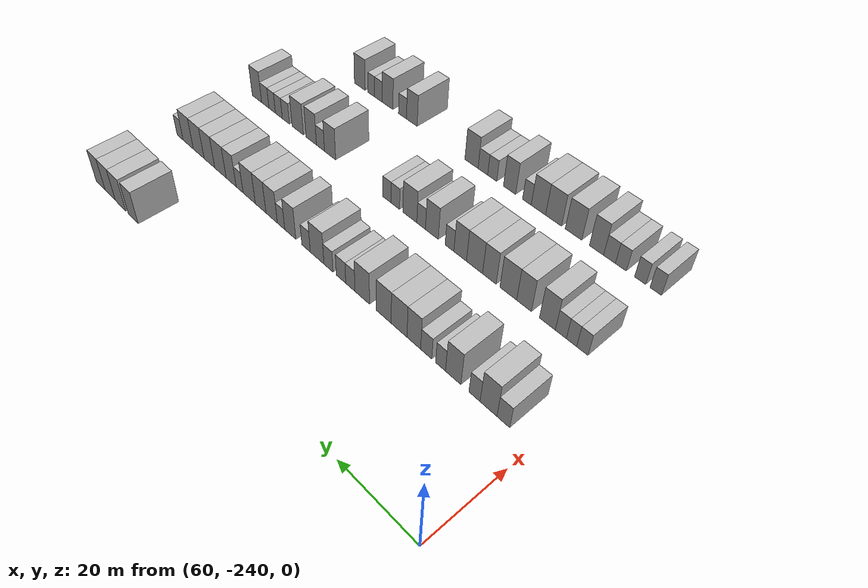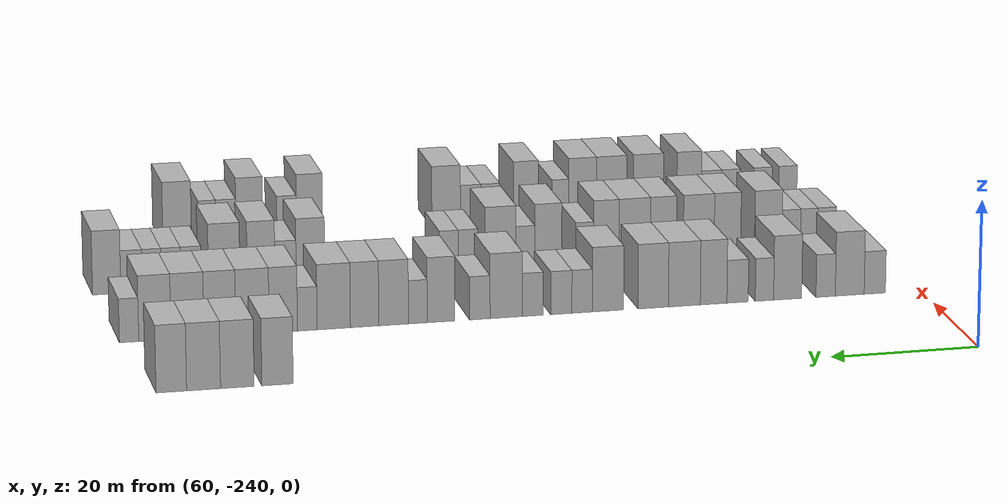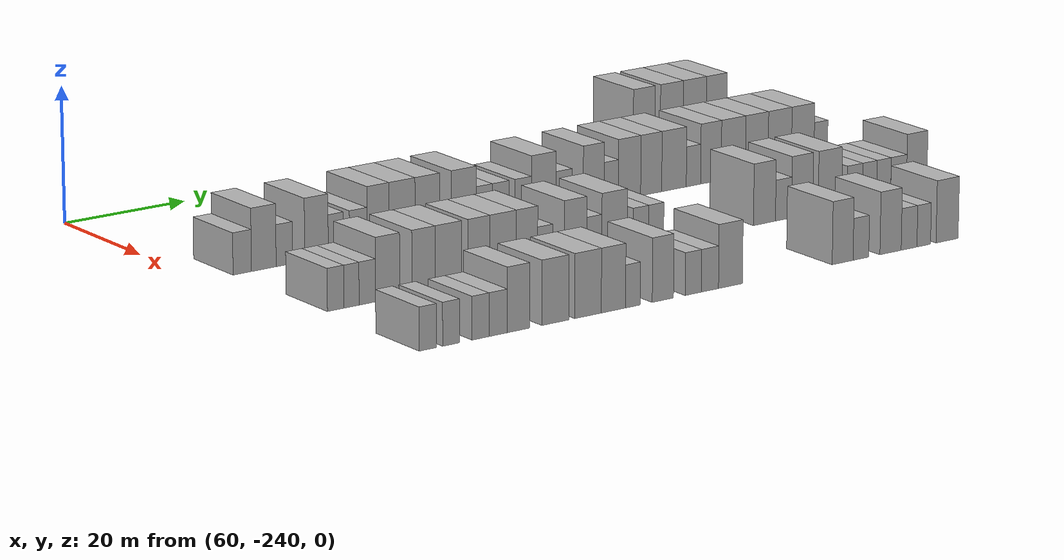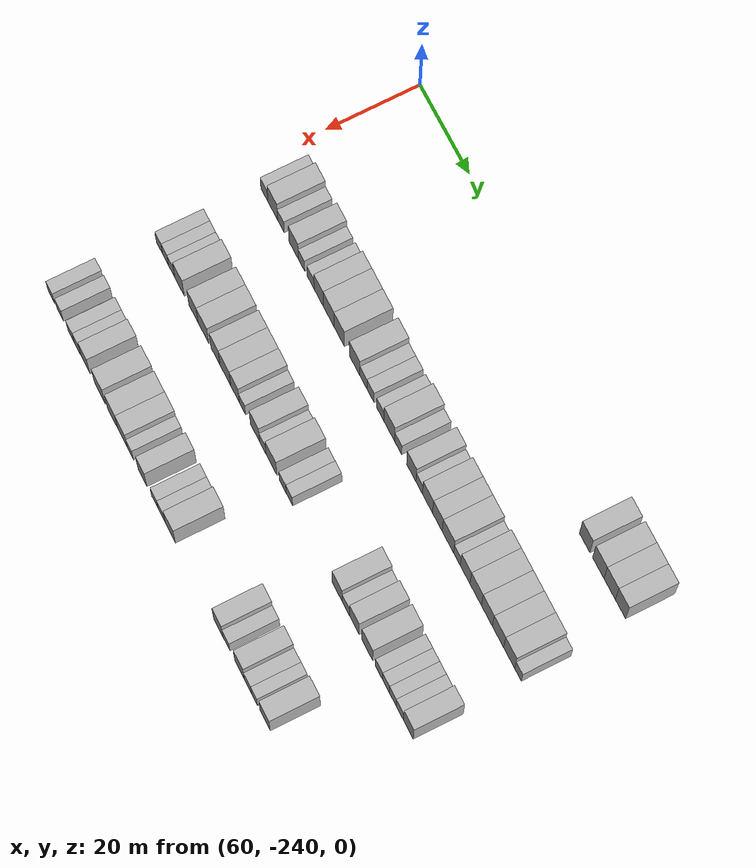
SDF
<sdf version="1.6">
 <world name="default">
  <model name="building_440">
   <static>1</static>
   <pose>69.0000 -147.6991 0 0.000000 0.000000 0.000000</pose>
   <link name="link">
    <pose>0 0 4.50 0 0 0</pose>
    <collision name="collision"><geometry><box><size>10.0000 4.0604 9.0000</size></box></geometry></collision>
    <visual name="visual">
     <cast_shadows>0</cast_shadows>
     <geometry><box><size>10.0000 4.0604 9.0000</size></box></geometry>
     <material>
      <script>
       <uri>model://HANNAS_wall/materials/scripts</uri>
       <uri>model://HANNAS_wall/materials/textures</uri>
       <name>vrc/HANNAS_wall</name>
      </script>
     </material>
    </visual>
   </link>
  </model>
  <model name="building_441">
   <static>1</static>
   <pose>69.0000 -142.4970 0 0.000000 0.000000 0.000000</pose>
   <link name="link">
    <pose>0 0 4.50 0 0 0</pose>
    <collision name="collision"><geometry><box><size>10.0000 4.3438 9.0000</size></box></geometry></collision>
    <visual name="visual">
     <cast_shadows>0</cast_shadows>
     <geometry><box><size>10.0000 4.3438 9.0000</size></box></geometry>
     <material>
      <script>
       <uri>model://HANNAS_wall/materials/scripts</uri>
       <uri>model://HANNAS_wall/materials/textures</uri>
       <name>vrc/HANNAS_wall</name>
      </script>
     </material>
    </visual>
   </link>
  </model>
  <model name="building_442">
   <static>1</static>
   <pose>69.0000 -138.1425 0 0.000000 0.000000 0.000000</pose>
   <link name="link">
    <pose>0 0 4.50 0 0 0</pose>
    <collision name="collision"><geometry><box><size>10.0000 4.3651 9.0000</size></box></geometry></collision>
    <visual name="visual">
     <cast_shadows>0</cast_shadows>
     <geometry><box><size>10.0000 4.3651 9.0000</size></box></geometry>
     <material>
      <script>
       <uri>model://HANNAS_wall/materials/scripts</uri>
       <uri>model://HANNAS_wall/materials/textures</uri>
       <name>vrc/HANNAS_wall</name>
      </script>
     </material>
    </visual>
   </link>
  </model>
  <model name="building_443">
   <static>1</static>
   <pose>69.0000 -133.9974 0 0.000000 0.000000 0.000000</pose>
   <link name="link">
    <pose>0 0 4.50 0 0 0</pose>
    <collision name="collision"><geometry><box><size>10.0000 3.9251 9.0000</size></box></geometry></collision>
    <visual name="visual">
     <cast_shadows>0</cast_shadows>
     <geometry><box><size>10.0000 3.9251 9.0000</size></box></geometry>
     <material>
      <script>
       <uri>model://HANNAS_wall/materials/scripts</uri>
       <uri>model://HANNAS_wall/materials/textures</uri>
       <name>vrc/HANNAS_wall</name>
      </script>
     </material>
    </visual>
   </link>
  </model>
  <model name="building_602">
   <static>1</static>
   <pose>91.0000 -233.5196 0 0.000000 0.000000 0.000000</pose>
   <link name="link">
    <pose>0 0 3.00 0 0 0</pose>
    <collision name="collision"><geometry><box><size>10.0000 2.9973 6.0000</size></box></geometry></collision>
    <visual name="visual">
     <cast_shadows>0</cast_shadows>
     <geometry><box><size>10.0000 2.9973 6.0000</size></box></geometry>
     <material>
      <script>
       <uri>model://HANNAS_wall/materials/scripts</uri>
       <uri>model://HANNAS_wall/materials/textures</uri>
       <name>vrc/HANNAS_wall</name>
      </script>
     </material>
    </visual>
   </link>
  </model>
  <model name="building_603">
   <static>1</static>
   <pose>91.0000 -229.9944 0 0.000000 0.000000 0.000000</pose>
   <link name="link">
    <pose>0 0 4.50 0 0 0</pose>
    <collision name="collision"><geometry><box><size>10.0000 4.0532 9.0000</size></box></geometry></collision>
    <visual name="visual">
     <cast_shadows>0</cast_shadows>
     <geometry><box><size>10.0000 4.0532 9.0000</size></box></geometry>
     <material>
      <script>
       <uri>model://HANNAS_wall/materials/scripts</uri>
       <uri>model://HANNAS_wall/materials/textures</uri>
       <name>vrc/HANNAS_wall</name>
      </script>
     </material>
    </visual>
   </link>
  </model>
  <model name="building_604">
   <static>1</static>
   <pose>91.0000 -226.6058 0 0.000000 0.000000 0.000000</pose>
   <link name="link">
    <pose>0 0 3.00 0 0 0</pose>
    <collision name="collision"><geometry><box><size>10.0000 2.7241 6.0000</size></box></geometry></collision>
    <visual name="visual">
     <cast_shadows>0</cast_shadows>
     <geometry><box><size>10.0000 2.7241 6.0000</size></box></geometry>
     <material>
      <script>
       <uri>model://HANNAS_wall/materials/scripts</uri>
       <uri>model://HANNAS_wall/materials/textures</uri>
       <name>vrc/HANNAS_wall</name>
      </script>
     </material>
    </visual>
   </link>
  </model>
  <model name="building_605">
   <static>1</static>
   <pose>91.0000 -221.2864 0 0.000000 0.000000 0.000000</pose>
   <link name="link">
    <pose>0 0 4.50 0 0 0</pose>
    <collision name="collision"><geometry><box><size>10.0000 3.9146 9.0000</size></box></geometry></collision>
    <visual name="visual">
     <cast_shadows>0</cast_shadows>
     <geometry><box><size>10.0000 3.9146 9.0000</size></box></geometry>
     <material>
      <script>
       <uri>model://HANNAS_wall/materials/scripts</uri>
       <uri>model://HANNAS_wall/materials/textures</uri>
       <name>vrc/HANNAS_wall</name>
      </script>
     </material>
    </visual>
   </link>
  </model>
  <model name="building_606">
   <static>1</static>
   <pose>91.0000 -218.0518 0 0.000000 0.000000 0.000000</pose>
   <link name="link">
    <pose>0 0 3.00 0 0 0</pose>
    <collision name="collision"><geometry><box><size>10.0000 2.5547 6.0000</size></box></geometry></collision>
    <visual name="visual">
     <cast_shadows>0</cast_shadows>
     <geometry><box><size>10.0000 2.5547 6.0000</size></box></geometry>
     <material>
      <script>
       <uri>model://HANNAS_wall/materials/scripts</uri>
       <uri>model://HANNAS_wall/materials/textures</uri>
       <name>vrc/HANNAS_wall</name>
      </script>
     </material>
    </visual>
   </link>
  </model>
  <model name="building_607">
   <static>1</static>
   <pose>91.0000 -214.2921 0 0.000000 0.000000 0.000000</pose>
   <link name="link">
    <pose>0 0 3.00 0 0 0</pose>
    <collision name="collision"><geometry><box><size>10.0000 2.9646 6.0000</size></box></geometry></collision>
    <visual name="visual">
     <cast_shadows>0</cast_shadows>
     <geometry><box><size>10.0000 2.9646 6.0000</size></box></geometry>
     <material>
      <script>
       <uri>model://HANNAS_wall/materials/scripts</uri>
       <uri>model://HANNAS_wall/materials/textures</uri>
       <name>vrc/HANNAS_wall</name>
      </script>
     </material>
    </visual>
   </link>
  </model>
  <model name="building_608">
   <static>1</static>
   <pose>91.0000 -210.9569 0 0.000000 0.000000 0.000000</pose>
   <link name="link">
    <pose>0 0 4.50 0 0 0</pose>
    <collision name="collision"><geometry><box><size>10.0000 3.7059 9.0000</size></box></geometry></collision>
    <visual name="visual">
     <cast_shadows>0</cast_shadows>
     <geometry><box><size>10.0000 3.7059 9.0000</size></box></geometry>
     <material>
      <script>
       <uri>model://HANNAS_wall/materials/scripts</uri>
       <uri>model://HANNAS_wall/materials/textures</uri>
       <name>vrc/HANNAS_wall</name>
      </script>
     </material>
    </visual>
   </link>
  </model>
  <model name="building_609">
   <static>1</static>
   <pose>91.0000 -206.8939 0 0.000000 0.000000 0.000000</pose>
   <link name="link">
    <pose>0 0 4.50 0 0 0</pose>
    <collision name="collision"><geometry><box><size>10.0000 4.4201 9.0000</size></box></geometry></collision>
    <visual name="visual">
     <cast_shadows>0</cast_shadows>
     <geometry><box><size>10.0000 4.4201 9.0000</size></box></geometry>
     <material>
      <script>
       <uri>model://HANNAS_wall/materials/scripts</uri>
       <uri>model://HANNAS_wall/materials/textures</uri>
       <name>vrc/HANNAS_wall</name>
      </script>
     </material>
    </visual>
   </link>
  </model>
  <model name="building_610">
   <static>1</static>
   <pose>91.0000 -202.5865 0 0.000000 0.000000 0.000000</pose>
   <link name="link">
    <pose>0 0 4.50 0 0 0</pose>
    <collision name="collision"><geometry><box><size>10.0000 4.1947 9.0000</size></box></geometry></collision>
    <visual name="visual">
     <cast_shadows>0</cast_shadows>
     <geometry><box><size>10.0000 4.1947 9.0000</size></box></geometry>
     <material>
      <script>
       <uri>model://HANNAS_wall/materials/scripts</uri>
       <uri>model://HANNAS_wall/materials/textures</uri>
       <name>vrc/HANNAS_wall</name>
      </script>
     </material>
    </visual>
   </link>
  </model>
  <model name="building_611">
   <static>1</static>
   <pose>91.0000 -196.3280 0 0.000000 0.000000 0.000000</pose>
   <link name="link">
    <pose>0 0 4.50 0 0 0</pose>
    <collision name="collision"><geometry><box><size>10.0000 4.3223 9.0000</size></box></geometry></collision>
    <visual name="visual">
     <cast_shadows>0</cast_shadows>
     <geometry><box><size>10.0000 4.3223 9.0000</size></box></geometry>
     <material>
      <script>
       <uri>model://HANNAS_wall/materials/scripts</uri>
       <uri>model://HANNAS_wall/materials/textures</uri>
       <name>vrc/HANNAS_wall</name>
      </script>
     </material>
    </visual>
   </link>
  </model>
  <model name="building_612">
   <static>1</static>
   <pose>91.0000 -192.7730 0 0.000000 0.000000 0.000000</pose>
   <link name="link">
    <pose>0 0 3.00 0 0 0</pose>
    <collision name="collision"><geometry><box><size>10.0000 2.7877 6.0000</size></box></geometry></collision>
    <visual name="visual">
     <cast_shadows>0</cast_shadows>
     <geometry><box><size>10.0000 2.7877 6.0000</size></box></geometry>
     <material>
      <script>
       <uri>model://HANNAS_wall/materials/scripts</uri>
       <uri>model://HANNAS_wall/materials/textures</uri>
       <name>vrc/HANNAS_wall</name>
      </script>
     </material>
    </visual>
   </link>
  </model>
  <model name="building_613">
   <static>1</static>
   <pose>91.0000 -189.9188 0 0.000000 0.000000 0.000000</pose>
   <link name="link">
    <pose>0 0 3.00 0 0 0</pose>
    <collision name="collision"><geometry><box><size>10.0000 2.9207 6.0000</size></box></geometry></collision>
    <visual name="visual">
     <cast_shadows>0</cast_shadows>
     <geometry><box><size>10.0000 2.9207 6.0000</size></box></geometry>
     <material>
      <script>
       <uri>model://HANNAS_wall/materials/scripts</uri>
       <uri>model://HANNAS_wall/materials/textures</uri>
       <name>vrc/HANNAS_wall</name>
      </script>
     </material>
    </visual>
   </link>
  </model>
  <model name="building_614">
   <static>1</static>
   <pose>91.0000 -186.0127 0 0.000000 0.000000 0.000000</pose>
   <link name="link">
    <pose>0 0 3.00 0 0 0</pose>
    <collision name="collision"><geometry><box><size>10.0000 2.8915 6.0000</size></box></geometry></collision>
    <visual name="visual">
     <cast_shadows>0</cast_shadows>
     <geometry><box><size>10.0000 2.8915 6.0000</size></box></geometry>
     <material>
      <script>
       <uri>model://HANNAS_wall/materials/scripts</uri>
       <uri>model://HANNAS_wall/materials/textures</uri>
       <name>vrc/HANNAS_wall</name>
      </script>
     </material>
    </visual>
   </link>
  </model>
  <model name="building_615">
   <static>1</static>
   <pose>91.0000 -182.3714 0 0.000000 0.000000 0.000000</pose>
   <link name="link">
    <pose>0 0 4.50 0 0 0</pose>
    <collision name="collision"><geometry><box><size>10.0000 4.3912 9.0000</size></box></geometry></collision>
    <visual name="visual">
     <cast_shadows>0</cast_shadows>
     <geometry><box><size>10.0000 4.3912 9.0000</size></box></geometry>
     <material>
      <script>
       <uri>model://HANNAS_wall/materials/scripts</uri>
       <uri>model://HANNAS_wall/materials/textures</uri>
       <name>vrc/HANNAS_wall</name>
      </script>
     </material>
    </visual>
   </link>
  </model>
  <model name="building_616">
   <static>1</static>
   <pose>91.0000 -178.7771 0 0.000000 0.000000 0.000000</pose>
   <link name="link">
    <pose>0 0 3.00 0 0 0</pose>
    <collision name="collision"><geometry><box><size>10.0000 2.7973 6.0000</size></box></geometry></collision>
    <visual name="visual">
     <cast_shadows>0</cast_shadows>
     <geometry><box><size>10.0000 2.7973 6.0000</size></box></geometry>
     <material>
      <script>
       <uri>model://HANNAS_wall/materials/scripts</uri>
       <uri>model://HANNAS_wall/materials/textures</uri>
       <name>vrc/HANNAS_wall</name>
      </script>
     </material>
    </visual>
   </link>
  </model>
  <model name="building_617">
   <static>1</static>
   <pose>91.0000 -173.5084 0 0.000000 0.000000 0.000000</pose>
   <link name="link">
    <pose>0 0 4.50 0 0 0</pose>
    <collision name="collision"><geometry><box><size>10.0000 3.7401 9.0000</size></box></geometry></collision>
    <visual name="visual">
     <cast_shadows>0</cast_shadows>
     <geometry><box><size>10.0000 3.7401 9.0000</size></box></geometry>
     <material>
      <script>
       <uri>model://HANNAS_wall/materials/scripts</uri>
       <uri>model://HANNAS_wall/materials/textures</uri>
       <name>vrc/HANNAS_wall</name>
      </script>
     </material>
    </visual>
   </link>
  </model>
  <model name="building_618">
   <static>1</static>
   <pose>91.0000 -170.3577 0 0.000000 0.000000 0.000000</pose>
   <link name="link">
    <pose>0 0 3.00 0 0 0</pose>
    <collision name="collision"><geometry><box><size>10.0000 2.5611 6.0000</size></box></geometry></collision>
    <visual name="visual">
     <cast_shadows>0</cast_shadows>
     <geometry><box><size>10.0000 2.5611 6.0000</size></box></geometry>
     <material>
      <script>
       <uri>model://HANNAS_wall/materials/scripts</uri>
       <uri>model://HANNAS_wall/materials/textures</uri>
       <name>vrc/HANNAS_wall</name>
      </script>
     </material>
    </visual>
   </link>
  </model>
  <model name="building_619">
   <static>1</static>
   <pose>91.0000 -167.0753 0 0.000000 0.000000 0.000000</pose>
   <link name="link">
    <pose>0 0 4.50 0 0 0</pose>
    <collision name="collision"><geometry><box><size>10.0000 4.0039 9.0000</size></box></geometry></collision>
    <visual name="visual">
     <cast_shadows>0</cast_shadows>
     <geometry><box><size>10.0000 4.0039 9.0000</size></box></geometry>
     <material>
      <script>
       <uri>model://HANNAS_wall/materials/scripts</uri>
       <uri>model://HANNAS_wall/materials/textures</uri>
       <name>vrc/HANNAS_wall</name>
      </script>
     </material>
    </visual>
   </link>
  </model>
  <model name="building_620">
   <static>1</static>
   <pose>91.0000 -163.1612 0 0.000000 0.000000 0.000000</pose>
   <link name="link">
    <pose>0 0 4.50 0 0 0</pose>
    <collision name="collision"><geometry><box><size>10.0000 3.8242 9.0000</size></box></geometry></collision>
    <visual name="visual">
     <cast_shadows>0</cast_shadows>
     <geometry><box><size>10.0000 3.8242 9.0000</size></box></geometry>
     <material>
      <script>
       <uri>model://HANNAS_wall/materials/scripts</uri>
       <uri>model://HANNAS_wall/materials/textures</uri>
       <name>vrc/HANNAS_wall</name>
      </script>
     </material>
    </visual>
   </link>
  </model>
  <model name="building_621">
   <static>1</static>
   <pose>91.0000 -159.0054 0 0.000000 0.000000 0.000000</pose>
   <link name="link">
    <pose>0 0 4.50 0 0 0</pose>
    <collision name="collision"><geometry><box><size>10.0000 4.4875 9.0000</size></box></geometry></collision>
    <visual name="visual">
     <cast_shadows>0</cast_shadows>
     <geometry><box><size>10.0000 4.4875 9.0000</size></box></geometry>
     <material>
      <script>
       <uri>model://HANNAS_wall/materials/scripts</uri>
       <uri>model://HANNAS_wall/materials/textures</uri>
       <name>vrc/HANNAS_wall</name>
      </script>
     </material>
    </visual>
   </link>
  </model>
  <model name="building_622">
   <static>1</static>
   <pose>91.0000 -155.4452 0 0.000000 0.000000 0.000000</pose>
   <link name="link">
    <pose>0 0 3.00 0 0 0</pose>
    <collision name="collision"><geometry><box><size>10.0000 2.6329 6.0000</size></box></geometry></collision>
    <visual name="visual">
     <cast_shadows>0</cast_shadows>
     <geometry><box><size>10.0000 2.6329 6.0000</size></box></geometry>
     <material>
      <script>
       <uri>model://HANNAS_wall/materials/scripts</uri>
       <uri>model://HANNAS_wall/materials/textures</uri>
       <name>vrc/HANNAS_wall</name>
      </script>
     </material>
    </visual>
   </link>
  </model>
  <model name="building_623">
   <static>1</static>
   <pose>91.0000 -152.2316 0 0.000000 0.000000 0.000000</pose>
   <link name="link">
    <pose>0 0 4.50 0 0 0</pose>
    <collision name="collision"><geometry><box><size>10.0000 3.7943 9.0000</size></box></geometry></collision>
    <visual name="visual">
     <cast_shadows>0</cast_shadows>
     <geometry><box><size>10.0000 3.7943 9.0000</size></box></geometry>
     <material>
      <script>
       <uri>model://HANNAS_wall/materials/scripts</uri>
       <uri>model://HANNAS_wall/materials/textures</uri>
       <name>vrc/HANNAS_wall</name>
      </script>
     </material>
    </visual>
   </link>
  </model>
  <model name="building_624">
   <static>1</static>
   <pose>91.0000 -148.0937 0 0.000000 0.000000 0.000000</pose>
   <link name="link">
    <pose>0 0 4.50 0 0 0</pose>
    <collision name="collision"><geometry><box><size>10.0000 4.4815 9.0000</size></box></geometry></collision>
    <visual name="visual">
     <cast_shadows>0</cast_shadows>
     <geometry><box><size>10.0000 4.4815 9.0000</size></box></geometry>
     <material>
      <script>
       <uri>model://HANNAS_wall/materials/scripts</uri>
       <uri>model://HANNAS_wall/materials/textures</uri>
       <name>vrc/HANNAS_wall</name>
      </script>
     </material>
    </visual>
   </link>
  </model>
  <model name="building_625">
   <static>1</static>
   <pose>91.0000 -143.7360 0 0.000000 0.000000 0.000000</pose>
   <link name="link">
    <pose>0 0 4.50 0 0 0</pose>
    <collision name="collision"><geometry><box><size>10.0000 4.2339 9.0000</size></box></geometry></collision>
    <visual name="visual">
     <cast_shadows>0</cast_shadows>
     <geometry><box><size>10.0000 4.2339 9.0000</size></box></geometry>
     <material>
      <script>
       <uri>model://HANNAS_wall/materials/scripts</uri>
       <uri>model://HANNAS_wall/materials/textures</uri>
       <name>vrc/HANNAS_wall</name>
      </script>
     </material>
    </visual>
   </link>
  </model>
  <model name="building_626">
   <static>1</static>
   <pose>91.0000 -139.4269 0 0.000000 0.000000 0.000000</pose>
   <link name="link">
    <pose>0 0 4.50 0 0 0</pose>
    <collision name="collision"><geometry><box><size>10.0000 4.3844 9.0000</size></box></geometry></collision>
    <visual name="visual">
     <cast_shadows>0</cast_shadows>
     <geometry><box><size>10.0000 4.3844 9.0000</size></box></geometry>
     <material>
      <script>
       <uri>model://HANNAS_wall/materials/scripts</uri>
       <uri>model://HANNAS_wall/materials/textures</uri>
       <name>vrc/HANNAS_wall</name>
      </script>
     </material>
    </visual>
   </link>
  </model>
  <model name="building_627">
   <static>1</static>
   <pose>91.0000 -135.0989 0 0.000000 0.000000 0.000000</pose>
   <link name="link">
    <pose>0 0 4.50 0 0 0</pose>
    <collision name="collision"><geometry><box><size>10.0000 4.2714 9.0000</size></box></geometry></collision>
    <visual name="visual">
     <cast_shadows>0</cast_shadows>
     <geometry><box><size>10.0000 4.2714 9.0000</size></box></geometry>
     <material>
      <script>
       <uri>model://HANNAS_wall/materials/scripts</uri>
       <uri>model://HANNAS_wall/materials/textures</uri>
       <name>vrc/HANNAS_wall</name>
      </script>
     </material>
    </visual>
   </link>
  </model>
  <model name="building_628">
   <static>1</static>
   <pose>91.0000 -131.6843 0 0.000000 0.000000 0.000000</pose>
   <link name="link">
    <pose>0 0 3.00 0 0 0</pose>
    <collision name="collision"><geometry><box><size>10.0000 2.5580 6.0000</size></box></geometry></collision>
    <visual name="visual">
     <cast_shadows>0</cast_shadows>
     <geometry><box><size>10.0000 2.5580 6.0000</size></box></geometry>
     <material>
      <script>
       <uri>model://HANNAS_wall/materials/scripts</uri>
       <uri>model://HANNAS_wall/materials/textures</uri>
       <name>vrc/HANNAS_wall</name>
      </script>
     </material>
    </visual>
   </link>
  </model>
  <model name="building_789">
   <static>1</static>
   <pose>113.0000 -232.9641 0 0.000000 0.000000 0.000000</pose>
   <link name="link">
    <pose>0 0 3.00 0 0 0</pose>
    <collision name="collision"><geometry><box><size>10.0000 2.6575 6.0000</size></box></geometry></collision>
    <visual name="visual">
     <cast_shadows>0</cast_shadows>
     <geometry><box><size>10.0000 2.6575 6.0000</size></box></geometry>
     <material>
      <script>
       <uri>model://HANNAS_wall/materials/scripts</uri>
       <uri>model://HANNAS_wall/materials/textures</uri>
       <name>vrc/HANNAS_wall</name>
      </script>
     </material>
    </visual>
   </link>
  </model>
  <model name="building_790">
   <static>1</static>
   <pose>113.0000 -230.4043 0 0.000000 0.000000 0.000000</pose>
   <link name="link">
    <pose>0 0 3.00 0 0 0</pose>
    <collision name="collision"><geometry><box><size>10.0000 2.4621 6.0000</size></box></geometry></collision>
    <visual name="visual">
     <cast_shadows>0</cast_shadows>
     <geometry><box><size>10.0000 2.4621 6.0000</size></box></geometry>
     <material>
      <script>
       <uri>model://HANNAS_wall/materials/scripts</uri>
       <uri>model://HANNAS_wall/materials/textures</uri>
       <name>vrc/HANNAS_wall</name>
      </script>
     </material>
    </visual>
   </link>
  </model>
  <model name="building_791">
   <static>1</static>
   <pose>113.0000 -227.8307 0 0.000000 0.000000 0.000000</pose>
   <link name="link">
    <pose>0 0 3.00 0 0 0</pose>
    <collision name="collision"><geometry><box><size>10.0000 2.6851 6.0000</size></box></geometry></collision>
    <visual name="visual">
     <cast_shadows>0</cast_shadows>
     <geometry><box><size>10.0000 2.6851 6.0000</size></box></geometry>
     <material>
      <script>
       <uri>model://HANNAS_wall/materials/scripts</uri>
       <uri>model://HANNAS_wall/materials/textures</uri>
       <name>vrc/HANNAS_wall</name>
      </script>
     </material>
    </visual>
   </link>
  </model>
  <model name="building_792">
   <static>1</static>
   <pose>113.0000 -224.5135 0 0.000000 0.000000 0.000000</pose>
   <link name="link">
    <pose>0 0 4.50 0 0 0</pose>
    <collision name="collision"><geometry><box><size>10.0000 3.9492 9.0000</size></box></geometry></collision>
    <visual name="visual">
     <cast_shadows>0</cast_shadows>
     <geometry><box><size>10.0000 3.9492 9.0000</size></box></geometry>
     <material>
      <script>
       <uri>model://HANNAS_wall/materials/scripts</uri>
       <uri>model://HANNAS_wall/materials/textures</uri>
       <name>vrc/HANNAS_wall</name>
      </script>
     </material>
    </visual>
   </link>
  </model>
  <model name="building_793">
   <static>1</static>
   <pose>113.0000 -218.6286 0 0.000000 0.000000 0.000000</pose>
   <link name="link">
    <pose>0 0 4.50 0 0 0</pose>
    <collision name="collision"><geometry><box><size>10.0000 3.8207 9.0000</size></box></geometry></collision>
    <visual name="visual">
     <cast_shadows>0</cast_shadows>
     <geometry><box><size>10.0000 3.8207 9.0000</size></box></geometry>
     <material>
      <script>
       <uri>model://HANNAS_wall/materials/scripts</uri>
       <uri>model://HANNAS_wall/materials/textures</uri>
       <name>vrc/HANNAS_wall</name>
      </script>
     </material>
    </visual>
   </link>
  </model>
  <model name="building_794">
   <static>1</static>
   <pose>113.0000 -214.5068 0 0.000000 0.000000 0.000000</pose>
   <link name="link">
    <pose>0 0 4.50 0 0 0</pose>
    <collision name="collision"><geometry><box><size>10.0000 4.4229 9.0000</size></box></geometry></collision>
    <visual name="visual">
     <cast_shadows>0</cast_shadows>
     <geometry><box><size>10.0000 4.4229 9.0000</size></box></geometry>
     <material>
      <script>
       <uri>model://HANNAS_wall/materials/scripts</uri>
       <uri>model://HANNAS_wall/materials/textures</uri>
       <name>vrc/HANNAS_wall</name>
      </script>
     </material>
    </visual>
   </link>
  </model>
  <model name="building_795">
   <static>1</static>
   <pose>113.0000 -209.4468 0 0.000000 0.000000 0.000000</pose>
   <link name="link">
    <pose>0 0 4.50 0 0 0</pose>
    <collision name="collision"><geometry><box><size>10.0000 3.6970 9.0000</size></box></geometry></collision>
    <visual name="visual">
     <cast_shadows>0</cast_shadows>
     <geometry><box><size>10.0000 3.6970 9.0000</size></box></geometry>
     <material>
      <script>
       <uri>model://HANNAS_wall/materials/scripts</uri>
       <uri>model://HANNAS_wall/materials/textures</uri>
       <name>vrc/HANNAS_wall</name>
      </script>
     </material>
    </visual>
   </link>
  </model>
  <model name="building_796">
   <static>1</static>
   <pose>113.0000 -205.3624 0 0.000000 0.000000 0.000000</pose>
   <link name="link">
    <pose>0 0 4.50 0 0 0</pose>
    <collision name="collision"><geometry><box><size>10.0000 4.4719 9.0000</size></box></geometry></collision>
    <visual name="visual">
     <cast_shadows>0</cast_shadows>
     <geometry><box><size>10.0000 4.4719 9.0000</size></box></geometry>
     <material>
      <script>
       <uri>model://HANNAS_wall/materials/scripts</uri>
       <uri>model://HANNAS_wall/materials/textures</uri>
       <name>vrc/HANNAS_wall</name>
      </script>
     </material>
    </visual>
   </link>
  </model>
  <model name="building_797">
   <static>1</static>
   <pose>113.0000 -201.3248 0 0.000000 0.000000 0.000000</pose>
   <link name="link">
    <pose>0 0 4.50 0 0 0</pose>
    <collision name="collision"><geometry><box><size>10.0000 3.6033 9.0000</size></box></geometry></collision>
    <visual name="visual">
     <cast_shadows>0</cast_shadows>
     <geometry><box><size>10.0000 3.6033 9.0000</size></box></geometry>
     <material>
      <script>
       <uri>model://HANNAS_wall/materials/scripts</uri>
       <uri>model://HANNAS_wall/materials/textures</uri>
       <name>vrc/HANNAS_wall</name>
      </script>
     </material>
    </visual>
   </link>
  </model>
  <model name="building_798">
   <static>1</static>
   <pose>113.0000 -198.2587 0 0.000000 0.000000 0.000000</pose>
   <link name="link">
    <pose>0 0 3.00 0 0 0</pose>
    <collision name="collision"><geometry><box><size>10.0000 2.5288 6.0000</size></box></geometry></collision>
    <visual name="visual">
     <cast_shadows>0</cast_shadows>
     <geometry><box><size>10.0000 2.5288 6.0000</size></box></geometry>
     <material>
      <script>
       <uri>model://HANNAS_wall/materials/scripts</uri>
       <uri>model://HANNAS_wall/materials/textures</uri>
       <name>vrc/HANNAS_wall</name>
      </script>
     </material>
    </visual>
   </link>
  </model>
  <model name="building_799">
   <static>1</static>
   <pose>113.0000 -193.0732 0 0.000000 0.000000 0.000000</pose>
   <link name="link">
    <pose>0 0 4.50 0 0 0</pose>
    <collision name="collision"><geometry><box><size>10.0000 3.8422 9.0000</size></box></geometry></collision>
    <visual name="visual">
     <cast_shadows>0</cast_shadows>
     <geometry><box><size>10.0000 3.8422 9.0000</size></box></geometry>
     <material>
      <script>
       <uri>model://HANNAS_wall/materials/scripts</uri>
       <uri>model://HANNAS_wall/materials/textures</uri>
       <name>vrc/HANNAS_wall</name>
      </script>
     </material>
    </visual>
   </link>
  </model>
  <model name="building_800">
   <static>1</static>
   <pose>113.0000 -189.8419 0 0.000000 0.000000 0.000000</pose>
   <link name="link">
    <pose>0 0 3.00 0 0 0</pose>
    <collision name="collision"><geometry><box><size>10.0000 2.6205 6.0000</size></box></geometry></collision>
    <visual name="visual">
     <cast_shadows>0</cast_shadows>
     <geometry><box><size>10.0000 2.6205 6.0000</size></box></geometry>
     <material>
      <script>
       <uri>model://HANNAS_wall/materials/scripts</uri>
       <uri>model://HANNAS_wall/materials/textures</uri>
       <name>vrc/HANNAS_wall</name>
      </script>
     </material>
    </visual>
   </link>
  </model>
  <model name="building_801">
   <static>1</static>
   <pose>113.0000 -186.3417 0 0.000000 0.000000 0.000000</pose>
   <link name="link">
    <pose>0 0 4.50 0 0 0</pose>
    <collision name="collision"><geometry><box><size>10.0000 4.3798 9.0000</size></box></geometry></collision>
    <visual name="visual">
     <cast_shadows>0</cast_shadows>
     <geometry><box><size>10.0000 4.3798 9.0000</size></box></geometry>
     <material>
      <script>
       <uri>model://HANNAS_wall/materials/scripts</uri>
       <uri>model://HANNAS_wall/materials/textures</uri>
       <name>vrc/HANNAS_wall</name>
      </script>
     </material>
    </visual>
   </link>
  </model>
  <model name="building_802">
   <static>1</static>
   <pose>113.0000 -181.7626 0 0.000000 0.000000 0.000000</pose>
   <link name="link">
    <pose>0 0 3.00 0 0 0</pose>
    <collision name="collision"><geometry><box><size>10.0000 2.7784 6.0000</size></box></geometry></collision>
    <visual name="visual">
     <cast_shadows>0</cast_shadows>
     <geometry><box><size>10.0000 2.7784 6.0000</size></box></geometry>
     <material>
      <script>
       <uri>model://HANNAS_wall/materials/scripts</uri>
       <uri>model://HANNAS_wall/materials/textures</uri>
       <name>vrc/HANNAS_wall</name>
      </script>
     </material>
    </visual>
   </link>
  </model>
  <model name="building_803">
   <static>1</static>
   <pose>113.0000 -179.0640 0 0.000000 0.000000 0.000000</pose>
   <link name="link">
    <pose>0 0 3.00 0 0 0</pose>
    <collision name="collision"><geometry><box><size>10.0000 2.6188 6.0000</size></box></geometry></collision>
    <visual name="visual">
     <cast_shadows>0</cast_shadows>
     <geometry><box><size>10.0000 2.6188 6.0000</size></box></geometry>
     <material>
      <script>
       <uri>model://HANNAS_wall/materials/scripts</uri>
       <uri>model://HANNAS_wall/materials/textures</uri>
       <name>vrc/HANNAS_wall</name>
      </script>
     </material>
    </visual>
   </link>
  </model>
  <model name="building_804">
   <static>1</static>
   <pose>113.0000 -159.7877 0 0.000000 0.000000 0.000000</pose>
   <link name="link">
    <pose>0 0 4.50 0 0 0</pose>
    <collision name="collision"><geometry><box><size>10.0000 3.9779 9.0000</size></box></geometry></collision>
    <visual name="visual">
     <cast_shadows>0</cast_shadows>
     <geometry><box><size>10.0000 3.9779 9.0000</size></box></geometry>
     <material>
      <script>
       <uri>model://HANNAS_wall/materials/scripts</uri>
       <uri>model://HANNAS_wall/materials/textures</uri>
       <name>vrc/HANNAS_wall</name>
      </script>
     </material>
    </visual>
   </link>
  </model>
  <model name="building_805">
   <static>1</static>
   <pose>113.0000 -156.3339 0 0.000000 0.000000 0.000000</pose>
   <link name="link">
    <pose>0 0 3.00 0 0 0</pose>
    <collision name="collision"><geometry><box><size>10.0000 2.9297 6.0000</size></box></geometry></collision>
    <visual name="visual">
     <cast_shadows>0</cast_shadows>
     <geometry><box><size>10.0000 2.9297 6.0000</size></box></geometry>
     <material>
      <script>
       <uri>model://HANNAS_wall/materials/scripts</uri>
       <uri>model://HANNAS_wall/materials/textures</uri>
       <name>vrc/HANNAS_wall</name>
      </script>
     </material>
    </visual>
   </link>
  </model>
  <model name="building_806">
   <static>1</static>
   <pose>113.0000 -152.9479 0 0.000000 0.000000 0.000000</pose>
   <link name="link">
    <pose>0 0 4.50 0 0 0</pose>
    <collision name="collision"><geometry><box><size>10.0000 3.8422 9.0000</size></box></geometry></collision>
    <visual name="visual">
     <cast_shadows>0</cast_shadows>
     <geometry><box><size>10.0000 3.8422 9.0000</size></box></geometry>
     <material>
      <script>
       <uri>model://HANNAS_wall/materials/scripts</uri>
       <uri>model://HANNAS_wall/materials/textures</uri>
       <name>vrc/HANNAS_wall</name>
      </script>
     </material>
    </visual>
   </link>
  </model>
  <model name="building_807">
   <static>1</static>
   <pose>113.0000 -147.8645 0 0.000000 0.000000 0.000000</pose>
   <link name="link">
    <pose>0 0 4.50 0 0 0</pose>
    <collision name="collision"><geometry><box><size>10.0000 4.3245 9.0000</size></box></geometry></collision>
    <visual name="visual">
     <cast_shadows>0</cast_shadows>
     <geometry><box><size>10.0000 4.3245 9.0000</size></box></geometry>
     <material>
      <script>
       <uri>model://HANNAS_wall/materials/scripts</uri>
       <uri>model://HANNAS_wall/materials/textures</uri>
       <name>vrc/HANNAS_wall</name>
      </script>
     </material>
    </visual>
   </link>
  </model>
  <model name="building_808">
   <static>1</static>
   <pose>113.0000 -143.3026 0 0.000000 0.000000 0.000000</pose>
   <link name="link">
    <pose>0 0 3.00 0 0 0</pose>
    <collision name="collision"><geometry><box><size>10.0000 2.7993 6.0000</size></box></geometry></collision>
    <visual name="visual">
     <cast_shadows>0</cast_shadows>
     <geometry><box><size>10.0000 2.7993 6.0000</size></box></geometry>
     <material>
      <script>
       <uri>model://HANNAS_wall/materials/scripts</uri>
       <uri>model://HANNAS_wall/materials/textures</uri>
       <name>vrc/HANNAS_wall</name>
      </script>
     </material>
    </visual>
   </link>
  </model>
  <model name="building_809">
   <static>1</static>
   <pose>113.0000 -140.5542 0 0.000000 0.000000 0.000000</pose>
   <link name="link">
    <pose>0 0 3.00 0 0 0</pose>
    <collision name="collision"><geometry><box><size>10.0000 2.6977 6.0000</size></box></geometry></collision>
    <visual name="visual">
     <cast_shadows>0</cast_shadows>
     <geometry><box><size>10.0000 2.6977 6.0000</size></box></geometry>
     <material>
      <script>
       <uri>model://HANNAS_wall/materials/scripts</uri>
       <uri>model://HANNAS_wall/materials/textures</uri>
       <name>vrc/HANNAS_wall</name>
      </script>
     </material>
    </visual>
   </link>
  </model>
  <model name="building_810">
   <static>1</static>
   <pose>113.0000 -137.9102 0 0.000000 0.000000 0.000000</pose>
   <link name="link">
    <pose>0 0 3.00 0 0 0</pose>
    <collision name="collision"><geometry><box><size>10.0000 2.5903 6.0000</size></box></geometry></collision>
    <visual name="visual">
     <cast_shadows>0</cast_shadows>
     <geometry><box><size>10.0000 2.5903 6.0000</size></box></geometry>
     <material>
      <script>
       <uri>model://HANNAS_wall/materials/scripts</uri>
       <uri>model://HANNAS_wall/materials/textures</uri>
       <name>vrc/HANNAS_wall</name>
      </script>
     </material>
    </visual>
   </link>
  </model>
  <model name="building_811">
   <static>1</static>
   <pose>113.0000 -135.1402 0 0.000000 0.000000 0.000000</pose>
   <link name="link">
    <pose>0 0 3.00 0 0 0</pose>
    <collision name="collision"><geometry><box><size>10.0000 2.9495 6.0000</size></box></geometry></collision>
    <visual name="visual">
     <cast_shadows>0</cast_shadows>
     <geometry><box><size>10.0000 2.9495 6.0000</size></box></geometry>
     <material>
      <script>
       <uri>model://HANNAS_wall/materials/scripts</uri>
       <uri>model://HANNAS_wall/materials/textures</uri>
       <name>vrc/HANNAS_wall</name>
      </script>
     </material>
    </visual>
   </link>
  </model>
  <model name="building_812">
   <static>1</static>
   <pose>113.0000 -131.7404 0 0.000000 0.000000 0.000000</pose>
   <link name="link">
    <pose>0 0 4.50 0 0 0</pose>
    <collision name="collision"><geometry><box><size>10.0000 3.8501 9.0000</size></box></geometry></collision>
    <visual name="visual">
     <cast_shadows>0</cast_shadows>
     <geometry><box><size>10.0000 3.8501 9.0000</size></box></geometry>
     <material>
      <script>
       <uri>model://HANNAS_wall/materials/scripts</uri>
       <uri>model://HANNAS_wall/materials/textures</uri>
       <name>vrc/HANNAS_wall</name>
      </script>
     </material>
    </visual>
   </link>
  </model>
  <model name="building_969">
   <static>1</static>
   <pose>135.0000 -233.3359 0 0.000000 0.000000 0.000000</pose>
   <link name="link">
    <pose>0 0 3.00 0 0 0</pose>
    <collision name="collision"><geometry><box><size>10.0000 2.7248 6.0000</size></box></geometry></collision>
    <visual name="visual">
     <cast_shadows>0</cast_shadows>
     <geometry><box><size>10.0000 2.7248 6.0000</size></box></geometry>
     <material>
      <script>
       <uri>model://HANNAS_wall/materials/scripts</uri>
       <uri>model://HANNAS_wall/materials/textures</uri>
       <name>vrc/HANNAS_wall</name>
      </script>
     </material>
    </visual>
   </link>
  </model>
  <model name="building_970">
   <static>1</static>
   <pose>135.0000 -229.6159 0 0.000000 0.000000 0.000000</pose>
   <link name="link">
    <pose>0 0 3.00 0 0 0</pose>
    <collision name="collision"><geometry><box><size>10.0000 2.7152 6.0000</size></box></geometry></collision>
    <visual name="visual">
     <cast_shadows>0</cast_shadows>
     <geometry><box><size>10.0000 2.7152 6.0000</size></box></geometry>
     <material>
      <script>
       <uri>model://HANNAS_wall/materials/scripts</uri>
       <uri>model://HANNAS_wall/materials/textures</uri>
       <name>vrc/HANNAS_wall</name>
      </script>
     </material>
    </visual>
   </link>
  </model>
  <model name="building_971">
   <static>1</static>
   <pose>135.0000 -224.8929 0 0.000000 0.000000 0.000000</pose>
   <link name="link">
    <pose>0 0 3.00 0 0 0</pose>
    <collision name="collision"><geometry><box><size>10.0000 2.7307 6.0000</size></box></geometry></collision>
    <visual name="visual">
     <cast_shadows>0</cast_shadows>
     <geometry><box><size>10.0000 2.7307 6.0000</size></box></geometry>
     <material>
      <script>
       <uri>model://HANNAS_wall/materials/scripts</uri>
       <uri>model://HANNAS_wall/materials/textures</uri>
       <name>vrc/HANNAS_wall</name>
      </script>
     </material>
    </visual>
   </link>
  </model>
  <model name="building_972">
   <static>1</static>
   <pose>135.0000 -222.0319 0 0.000000 0.000000 0.000000</pose>
   <link name="link">
    <pose>0 0 3.00 0 0 0</pose>
    <collision name="collision"><geometry><box><size>10.0000 2.9914 6.0000</size></box></geometry></collision>
    <visual name="visual">
     <cast_shadows>0</cast_shadows>
     <geometry><box><size>10.0000 2.9914 6.0000</size></box></geometry>
     <material>
      <script>
       <uri>model://HANNAS_wall/materials/scripts</uri>
       <uri>model://HANNAS_wall/materials/textures</uri>
       <name>vrc/HANNAS_wall</name>
      </script>
     </material>
    </visual>
   </link>
  </model>
  <model name="building_973">
   <static>1</static>
   <pose>135.0000 -218.7126 0 0.000000 0.000000 0.000000</pose>
   <link name="link">
    <pose>0 0 4.50 0 0 0</pose>
    <collision name="collision"><geometry><box><size>10.0000 3.6472 9.0000</size></box></geometry></collision>
    <visual name="visual">
     <cast_shadows>0</cast_shadows>
     <geometry><box><size>10.0000 3.6472 9.0000</size></box></geometry>
     <material>
      <script>
       <uri>model://HANNAS_wall/materials/scripts</uri>
       <uri>model://HANNAS_wall/materials/textures</uri>
       <name>vrc/HANNAS_wall</name>
      </script>
     </material>
    </visual>
   </link>
  </model>
  <model name="building_974">
   <static>1</static>
   <pose>135.0000 -212.6837 0 0.000000 0.000000 0.000000</pose>
   <link name="link">
    <pose>0 0 4.50 0 0 0</pose>
    <collision name="collision"><geometry><box><size>10.0000 4.4105 9.0000</size></box></geometry></collision>
    <visual name="visual">
     <cast_shadows>0</cast_shadows>
     <geometry><box><size>10.0000 4.4105 9.0000</size></box></geometry>
     <material>
      <script>
       <uri>model://HANNAS_wall/materials/scripts</uri>
       <uri>model://HANNAS_wall/materials/textures</uri>
       <name>vrc/HANNAS_wall</name>
      </script>
     </material>
    </visual>
   </link>
  </model>
  <model name="building_975">
   <static>1</static>
   <pose>135.0000 -207.2846 0 0.000000 0.000000 0.000000</pose>
   <link name="link">
    <pose>0 0 4.50 0 0 0</pose>
    <collision name="collision"><geometry><box><size>10.0000 4.3876 9.0000</size></box></geometry></collision>
    <visual name="visual">
     <cast_shadows>0</cast_shadows>
     <geometry><box><size>10.0000 4.3876 9.0000</size></box></geometry>
     <material>
      <script>
       <uri>model://HANNAS_wall/materials/scripts</uri>
       <uri>model://HANNAS_wall/materials/textures</uri>
       <name>vrc/HANNAS_wall</name>
      </script>
     </material>
    </visual>
   </link>
  </model>
  <model name="building_976">
   <static>1</static>
   <pose>135.0000 -203.0599 0 0.000000 0.000000 0.000000</pose>
   <link name="link">
    <pose>0 0 4.50 0 0 0</pose>
    <collision name="collision"><geometry><box><size>10.0000 4.0618 9.0000</size></box></geometry></collision>
    <visual name="visual">
     <cast_shadows>0</cast_shadows>
     <geometry><box><size>10.0000 4.0618 9.0000</size></box></geometry>
     <material>
      <script>
       <uri>model://HANNAS_wall/materials/scripts</uri>
       <uri>model://HANNAS_wall/materials/textures</uri>
       <name>vrc/HANNAS_wall</name>
      </script>
     </material>
    </visual>
   </link>
  </model>
  <model name="building_977">
   <static>1</static>
   <pose>135.0000 -199.7891 0 0.000000 0.000000 0.000000</pose>
   <link name="link">
    <pose>0 0 3.00 0 0 0</pose>
    <collision name="collision"><geometry><box><size>10.0000 2.4798 6.0000</size></box></geometry></collision>
    <visual name="visual">
     <cast_shadows>0</cast_shadows>
     <geometry><box><size>10.0000 2.4798 6.0000</size></box></geometry>
     <material>
      <script>
       <uri>model://HANNAS_wall/materials/scripts</uri>
       <uri>model://HANNAS_wall/materials/textures</uri>
       <name>vrc/HANNAS_wall</name>
      </script>
     </material>
    </visual>
   </link>
  </model>
  <model name="building_978">
   <static>1</static>
   <pose>135.0000 -194.7489 0 0.000000 0.000000 0.000000</pose>
   <link name="link">
    <pose>0 0 4.50 0 0 0</pose>
    <collision name="collision"><geometry><box><size>10.0000 3.6006 9.0000</size></box></geometry></collision>
    <visual name="visual">
     <cast_shadows>0</cast_shadows>
     <geometry><box><size>10.0000 3.6006 9.0000</size></box></geometry>
     <material>
      <script>
       <uri>model://HANNAS_wall/materials/scripts</uri>
       <uri>model://HANNAS_wall/materials/textures</uri>
       <name>vrc/HANNAS_wall</name>
      </script>
     </material>
    </visual>
   </link>
  </model>
  <model name="building_979">
   <static>1</static>
   <pose>135.0000 -189.5742 0 0.000000 0.000000 0.000000</pose>
   <link name="link">
    <pose>0 0 3.00 0 0 0</pose>
    <collision name="collision"><geometry><box><size>10.0000 2.7487 6.0000</size></box></geometry></collision>
    <visual name="visual">
     <cast_shadows>0</cast_shadows>
     <geometry><box><size>10.0000 2.7487 6.0000</size></box></geometry>
     <material>
      <script>
       <uri>model://HANNAS_wall/materials/scripts</uri>
       <uri>model://HANNAS_wall/materials/textures</uri>
       <name>vrc/HANNAS_wall</name>
      </script>
     </material>
    </visual>
   </link>
  </model>
  <model name="building_980">
   <static>1</static>
   <pose>135.0000 -186.7283 0 0.000000 0.000000 0.000000</pose>
   <link name="link">
    <pose>0 0 3.00 0 0 0</pose>
    <collision name="collision"><geometry><box><size>10.0000 2.9432 6.0000</size></box></geometry></collision>
    <visual name="visual">
     <cast_shadows>0</cast_shadows>
     <geometry><box><size>10.0000 2.9432 6.0000</size></box></geometry>
     <material>
      <script>
       <uri>model://HANNAS_wall/materials/scripts</uri>
       <uri>model://HANNAS_wall/materials/textures</uri>
       <name>vrc/HANNAS_wall</name>
      </script>
     </material>
    </visual>
   </link>
  </model>
  <model name="building_981">
   <static>1</static>
   <pose>135.0000 -183.1925 0 0.000000 0.000000 0.000000</pose>
   <link name="link">
    <pose>0 0 4.50 0 0 0</pose>
    <collision name="collision"><geometry><box><size>10.0000 4.1285 9.0000</size></box></geometry></collision>
    <visual name="visual">
     <cast_shadows>0</cast_shadows>
     <geometry><box><size>10.0000 4.1285 9.0000</size></box></geometry>
     <material>
      <script>
       <uri>model://HANNAS_wall/materials/scripts</uri>
       <uri>model://HANNAS_wall/materials/textures</uri>
       <name>vrc/HANNAS_wall</name>
      </script>
     </material>
    </visual>
   </link>
  </model>
  <model name="building_982">
   <static>1</static>
   <pose>135.0000 -163.5449 0 0.000000 0.000000 0.000000</pose>
   <link name="link">
    <pose>0 0 4.50 0 0 0</pose>
    <collision name="collision"><geometry><box><size>10.0000 3.7222 9.0000</size></box></geometry></collision>
    <visual name="visual">
     <cast_shadows>0</cast_shadows>
     <geometry><box><size>10.0000 3.7222 9.0000</size></box></geometry>
     <material>
      <script>
       <uri>model://HANNAS_wall/materials/scripts</uri>
       <uri>model://HANNAS_wall/materials/textures</uri>
       <name>vrc/HANNAS_wall</name>
      </script>
     </material>
    </visual>
   </link>
  </model>
  <model name="building_983">
   <static>1</static>
   <pose>135.0000 -160.2831 0 0.000000 0.000000 0.000000</pose>
   <link name="link">
    <pose>0 0 3.00 0 0 0</pose>
    <collision name="collision"><geometry><box><size>10.0000 2.8014 6.0000</size></box></geometry></collision>
    <visual name="visual">
     <cast_shadows>0</cast_shadows>
     <geometry><box><size>10.0000 2.8014 6.0000</size></box></geometry>
     <material>
      <script>
       <uri>model://HANNAS_wall/materials/scripts</uri>
       <uri>model://HANNAS_wall/materials/textures</uri>
       <name>vrc/HANNAS_wall</name>
      </script>
     </material>
    </visual>
   </link>
  </model>
  <model name="building_984">
   <static>1</static>
   <pose>135.0000 -154.9679 0 0.000000 0.000000 0.000000</pose>
   <link name="link">
    <pose>0 0 4.50 0 0 0</pose>
    <collision name="collision"><geometry><box><size>10.0000 3.8289 9.0000</size></box></geometry></collision>
    <visual name="visual">
     <cast_shadows>0</cast_shadows>
     <geometry><box><size>10.0000 3.8289 9.0000</size></box></geometry>
     <material>
      <script>
       <uri>model://HANNAS_wall/materials/scripts</uri>
       <uri>model://HANNAS_wall/materials/textures</uri>
       <name>vrc/HANNAS_wall</name>
      </script>
     </material>
    </visual>
   </link>
  </model>
  <model name="building_985">
   <static>1</static>
   <pose>135.0000 -151.6227 0 0.000000 0.000000 0.000000</pose>
   <link name="link">
    <pose>0 0 3.00 0 0 0</pose>
    <collision name="collision"><geometry><box><size>10.0000 2.8615 6.0000</size></box></geometry></collision>
    <visual name="visual">
     <cast_shadows>0</cast_shadows>
     <geometry><box><size>10.0000 2.8615 6.0000</size></box></geometry>
     <material>
      <script>
       <uri>model://HANNAS_wall/materials/scripts</uri>
       <uri>model://HANNAS_wall/materials/textures</uri>
       <name>vrc/HANNAS_wall</name>
      </script>
     </material>
    </visual>
   </link>
  </model>
  <model name="building_986">
   <static>1</static>
   <pose>135.0000 -148.9571 0 0.000000 0.000000 0.000000</pose>
   <link name="link">
    <pose>0 0 3.00 0 0 0</pose>
    <collision name="collision"><geometry><box><size>10.0000 2.4696 6.0000</size></box></geometry></collision>
    <visual name="visual">
     <cast_shadows>0</cast_shadows>
     <geometry><box><size>10.0000 2.4696 6.0000</size></box></geometry>
     <material>
      <script>
       <uri>model://HANNAS_wall/materials/scripts</uri>
       <uri>model://HANNAS_wall/materials/textures</uri>
       <name>vrc/HANNAS_wall</name>
      </script>
     </material>
    </visual>
   </link>
  </model>
  <model name="building_987">
   <static>1</static>
   <pose>135.0000 -144.6983 0 0.000000 0.000000 0.000000</pose>
   <link name="link">
    <pose>0 0 4.50 0 0 0</pose>
    <collision name="collision"><geometry><box><size>10.0000 4.0480 9.0000</size></box></geometry></collision>
    <visual name="visual">
     <cast_shadows>0</cast_shadows>
     <geometry><box><size>10.0000 4.0480 9.0000</size></box></geometry>
     <material>
      <script>
       <uri>model://HANNAS_wall/materials/scripts</uri>
       <uri>model://HANNAS_wall/materials/textures</uri>
       <name>vrc/HANNAS_wall</name>
      </script>
     </material>
    </visual>
   </link>
  </model>
 </world>
</sdf>
